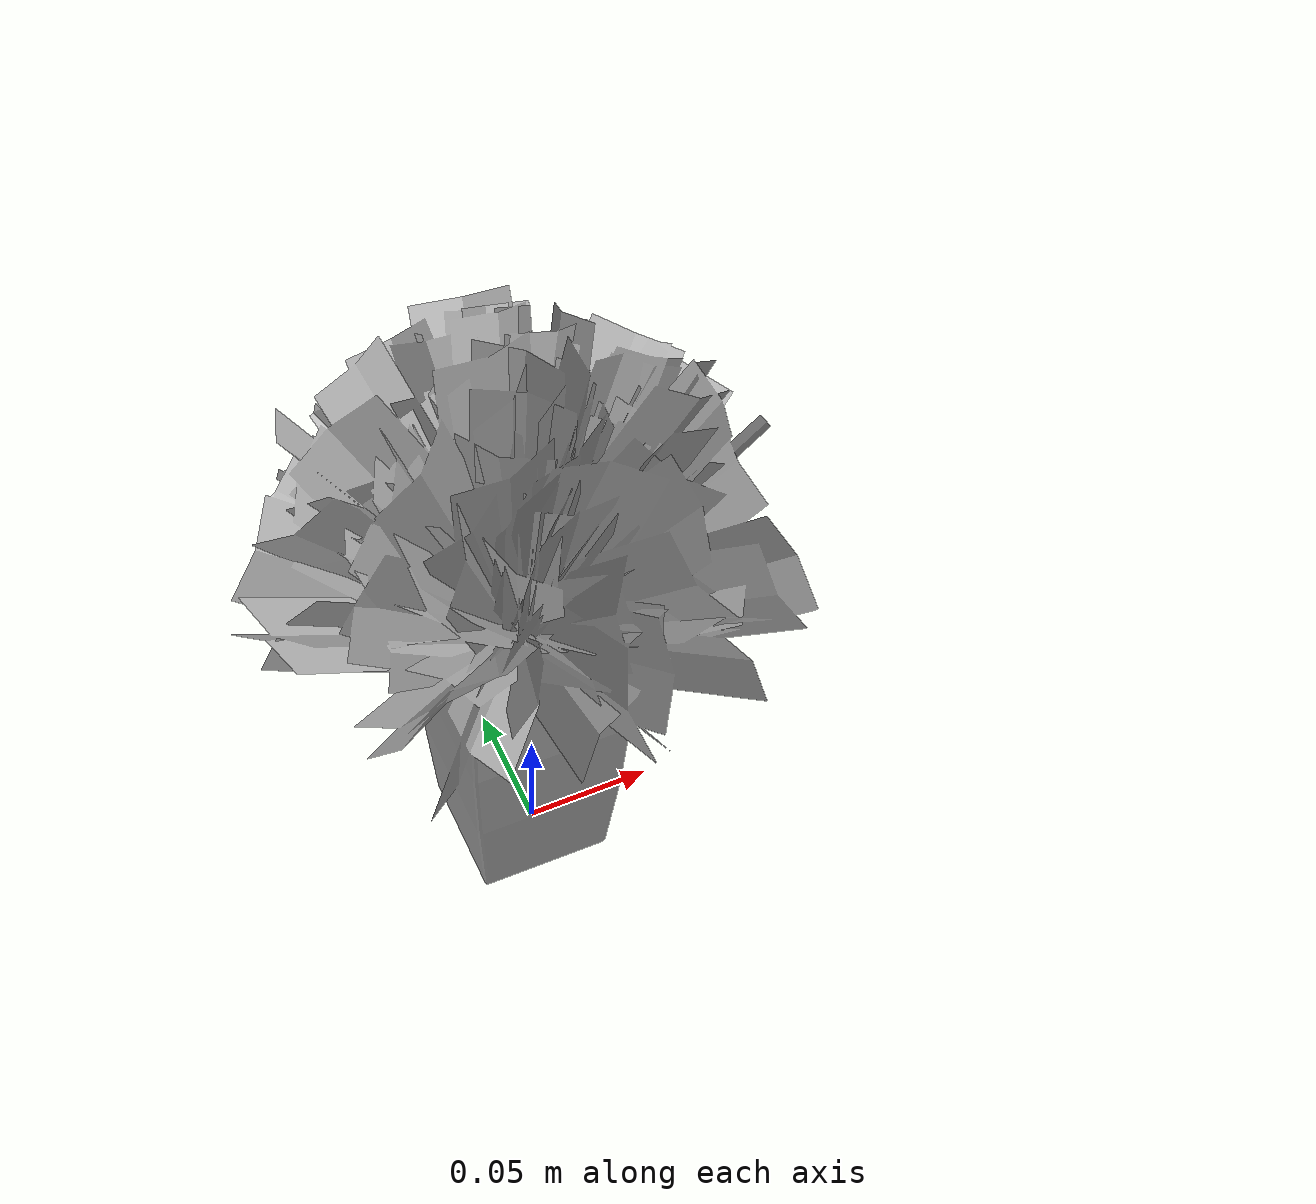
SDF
<?xml version='1.0'?>
<sdf version='1.4'>
  <model name='739'>
    <pose>0 0 0 0 0 0</pose>
    <static>true</static>
    <link name='link'>
      <collision name='collision'>
        <pose>0 0 0 0 0 0</pose>
        <geometry>
          <box>
            <size>0.206748 0.202036 2</size>
          </box>
        </geometry>
      </collision>
      <visual name='visual'>
        <pose>0 0 0 0 0 0</pose>
        <geometry>
          <mesh><uri>model://739/739.dae</uri></mesh>
        </geometry>
      </visual>
    </link>
  </model>
</sdf>
